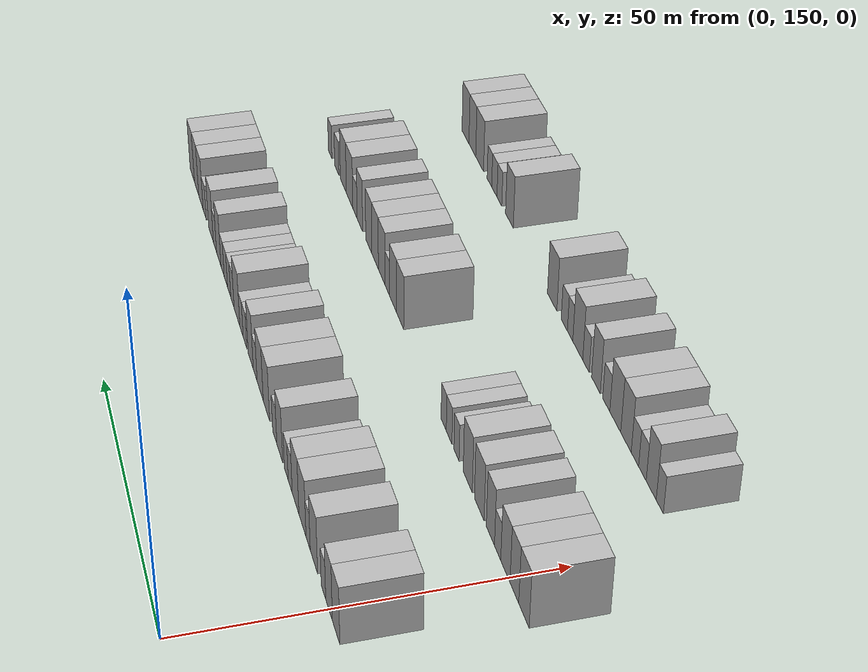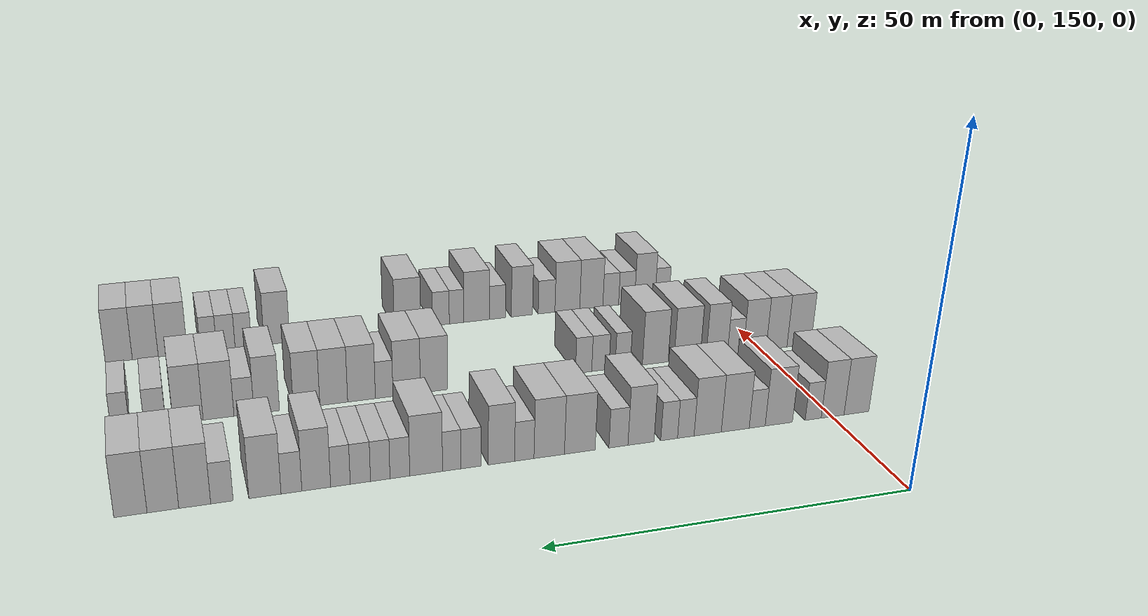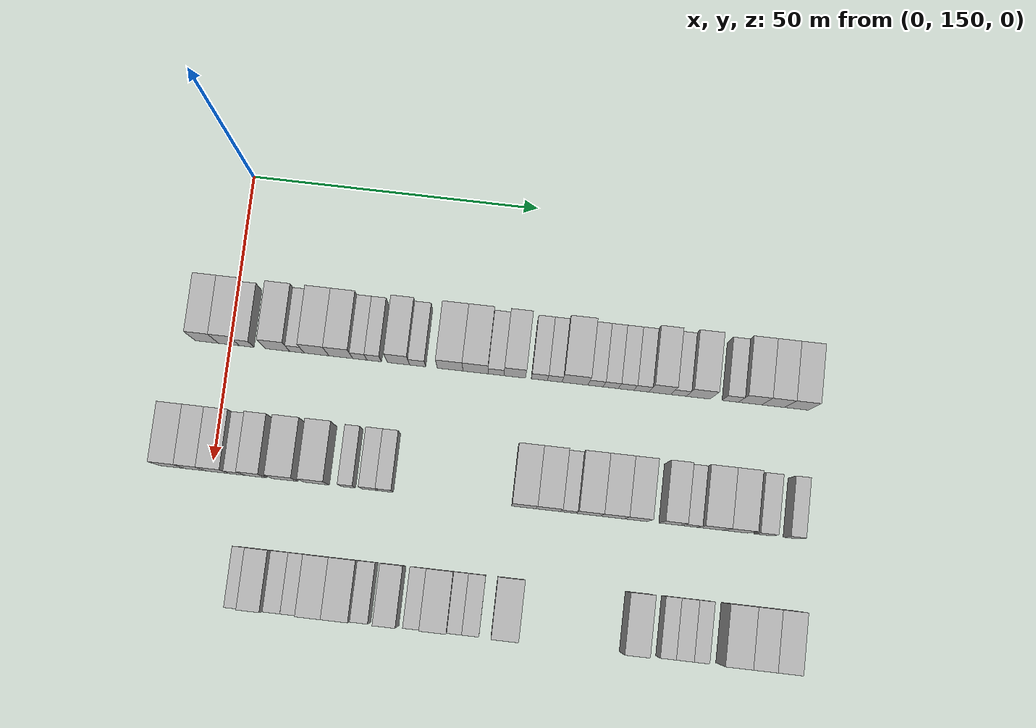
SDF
<sdf version="1.6">
 <world name="default">
  <model name="building_80">
   <static>1</static>
   <pose>25.0000 146.0388 0 0.000000 0.000000 0.000000</pose>
   <link name="link">
    <pose>0 0 4.50 0 0 0</pose>
    <collision name="collision"><geometry><box><size>10.0000 3.9945 9.0000</size></box></geometry></collision>
    <visual name="visual">
     <cast_shadows>0</cast_shadows>
     <geometry><box><size>10.0000 3.9945 9.0000</size></box></geometry>
     <material>
      <script>
       <uri>model://HANNAS_wall/materials/scripts</uri>
       <uri>model://HANNAS_wall/materials/textures</uri>
       <name>vrc/HANNAS_wall</name>
      </script>
     </material>
    </visual>
   </link>
  </model>
  <model name="building_81">
   <static>1</static>
   <pose>25.0000 149.8512 0 0.000000 0.000000 0.000000</pose>
   <link name="link">
    <pose>0 0 4.50 0 0 0</pose>
    <collision name="collision"><geometry><box><size>10.0000 3.6303 9.0000</size></box></geometry></collision>
    <visual name="visual">
     <cast_shadows>0</cast_shadows>
     <geometry><box><size>10.0000 3.6303 9.0000</size></box></geometry>
     <material>
      <script>
       <uri>model://HANNAS_wall/materials/scripts</uri>
       <uri>model://HANNAS_wall/materials/textures</uri>
       <name>vrc/HANNAS_wall</name>
      </script>
     </material>
    </visual>
   </link>
  </model>
  <model name="building_82">
   <static>1</static>
   <pose>25.0000 152.9293 0 0.000000 0.000000 0.000000</pose>
   <link name="link">
    <pose>0 0 3.00 0 0 0</pose>
    <collision name="collision"><geometry><box><size>10.0000 2.5258 6.0000</size></box></geometry></collision>
    <visual name="visual">
     <cast_shadows>0</cast_shadows>
     <geometry><box><size>10.0000 2.5258 6.0000</size></box></geometry>
     <material>
      <script>
       <uri>model://HANNAS_wall/materials/scripts</uri>
       <uri>model://HANNAS_wall/materials/textures</uri>
       <name>vrc/HANNAS_wall</name>
      </script>
     </material>
    </visual>
   </link>
  </model>
  <model name="building_83">
   <static>1</static>
   <pose>25.0000 158.3214 0 0.000000 0.000000 0.000000</pose>
   <link name="link">
    <pose>0 0 4.50 0 0 0</pose>
    <collision name="collision"><geometry><box><size>10.0000 4.2585 9.0000</size></box></geometry></collision>
    <visual name="visual">
     <cast_shadows>0</cast_shadows>
     <geometry><box><size>10.0000 4.2585 9.0000</size></box></geometry>
     <material>
      <script>
       <uri>model://HANNAS_wall/materials/scripts</uri>
       <uri>model://HANNAS_wall/materials/textures</uri>
       <name>vrc/HANNAS_wall</name>
      </script>
     </material>
    </visual>
   </link>
  </model>
  <model name="building_84">
   <static>1</static>
   <pose>25.0000 161.6868 0 0.000000 0.000000 0.000000</pose>
   <link name="link">
    <pose>0 0 3.00 0 0 0</pose>
    <collision name="collision"><geometry><box><size>10.0000 2.4722 6.0000</size></box></geometry></collision>
    <visual name="visual">
     <cast_shadows>0</cast_shadows>
     <geometry><box><size>10.0000 2.4722 6.0000</size></box></geometry>
     <material>
      <script>
       <uri>model://HANNAS_wall/materials/scripts</uri>
       <uri>model://HANNAS_wall/materials/textures</uri>
       <name>vrc/HANNAS_wall</name>
      </script>
     </material>
    </visual>
   </link>
  </model>
  <model name="building_85">
   <static>1</static>
   <pose>25.0000 165.0576 0 0.000000 0.000000 0.000000</pose>
   <link name="link">
    <pose>0 0 4.50 0 0 0</pose>
    <collision name="collision"><geometry><box><size>10.0000 4.2694 9.0000</size></box></geometry></collision>
    <visual name="visual">
     <cast_shadows>0</cast_shadows>
     <geometry><box><size>10.0000 4.2694 9.0000</size></box></geometry>
     <material>
      <script>
       <uri>model://HANNAS_wall/materials/scripts</uri>
       <uri>model://HANNAS_wall/materials/textures</uri>
       <name>vrc/HANNAS_wall</name>
      </script>
     </material>
    </visual>
   </link>
  </model>
  <model name="building_86">
   <static>1</static>
   <pose>25.0000 169.2549 0 0.000000 0.000000 0.000000</pose>
   <link name="link">
    <pose>0 0 4.50 0 0 0</pose>
    <collision name="collision"><geometry><box><size>10.0000 4.1251 9.0000</size></box></geometry></collision>
    <visual name="visual">
     <cast_shadows>0</cast_shadows>
     <geometry><box><size>10.0000 4.1251 9.0000</size></box></geometry>
     <material>
      <script>
       <uri>model://HANNAS_wall/materials/scripts</uri>
       <uri>model://HANNAS_wall/materials/textures</uri>
       <name>vrc/HANNAS_wall</name>
      </script>
     </material>
    </visual>
   </link>
  </model>
  <model name="building_87">
   <static>1</static>
   <pose>25.0000 172.5622 0 0.000000 0.000000 0.000000</pose>
   <link name="link">
    <pose>0 0 3.00 0 0 0</pose>
    <collision name="collision"><geometry><box><size>10.0000 2.4895 6.0000</size></box></geometry></collision>
    <visual name="visual">
     <cast_shadows>0</cast_shadows>
     <geometry><box><size>10.0000 2.4895 6.0000</size></box></geometry>
     <material>
      <script>
       <uri>model://HANNAS_wall/materials/scripts</uri>
       <uri>model://HANNAS_wall/materials/textures</uri>
       <name>vrc/HANNAS_wall</name>
      </script>
     </material>
    </visual>
   </link>
  </model>
  <model name="building_88">
   <static>1</static>
   <pose>25.0000 175.0597 0 0.000000 0.000000 0.000000</pose>
   <link name="link">
    <pose>0 0 3.00 0 0 0</pose>
    <collision name="collision"><geometry><box><size>10.0000 2.5054 6.0000</size></box></geometry></collision>
    <visual name="visual">
     <cast_shadows>0</cast_shadows>
     <geometry><box><size>10.0000 2.5054 6.0000</size></box></geometry>
     <material>
      <script>
       <uri>model://HANNAS_wall/materials/scripts</uri>
       <uri>model://HANNAS_wall/materials/textures</uri>
       <name>vrc/HANNAS_wall</name>
      </script>
     </material>
    </visual>
   </link>
  </model>
  <model name="building_89">
   <static>1</static>
   <pose>25.0000 179.2354 0 0.000000 0.000000 0.000000</pose>
   <link name="link">
    <pose>0 0 4.50 0 0 0</pose>
    <collision name="collision"><geometry><box><size>10.0000 3.8461 9.0000</size></box></geometry></collision>
    <visual name="visual">
     <cast_shadows>0</cast_shadows>
     <geometry><box><size>10.0000 3.8461 9.0000</size></box></geometry>
     <material>
      <script>
       <uri>model://HANNAS_wall/materials/scripts</uri>
       <uri>model://HANNAS_wall/materials/textures</uri>
       <name>vrc/HANNAS_wall</name>
      </script>
     </material>
    </visual>
   </link>
  </model>
  <model name="building_90">
   <static>1</static>
   <pose>25.0000 182.5520 0 0.000000 0.000000 0.000000</pose>
   <link name="link">
    <pose>0 0 3.00 0 0 0</pose>
    <collision name="collision"><geometry><box><size>10.0000 2.7871 6.0000</size></box></geometry></collision>
    <visual name="visual">
     <cast_shadows>0</cast_shadows>
     <geometry><box><size>10.0000 2.7871 6.0000</size></box></geometry>
     <material>
      <script>
       <uri>model://HANNAS_wall/materials/scripts</uri>
       <uri>model://HANNAS_wall/materials/textures</uri>
       <name>vrc/HANNAS_wall</name>
      </script>
     </material>
    </visual>
   </link>
  </model>
  <model name="building_91">
   <static>1</static>
   <pose>25.0000 188.1595 0 0.000000 0.000000 0.000000</pose>
   <link name="link">
    <pose>0 0 4.50 0 0 0</pose>
    <collision name="collision"><geometry><box><size>10.0000 4.4278 9.0000</size></box></geometry></collision>
    <visual name="visual">
     <cast_shadows>0</cast_shadows>
     <geometry><box><size>10.0000 4.4278 9.0000</size></box></geometry>
     <material>
      <script>
       <uri>model://HANNAS_wall/materials/scripts</uri>
       <uri>model://HANNAS_wall/materials/textures</uri>
       <name>vrc/HANNAS_wall</name>
      </script>
     </material>
    </visual>
   </link>
  </model>
  <model name="building_92">
   <static>1</static>
   <pose>25.0000 192.5431 0 0.000000 0.000000 0.000000</pose>
   <link name="link">
    <pose>0 0 4.50 0 0 0</pose>
    <collision name="collision"><geometry><box><size>10.0000 4.3395 9.0000</size></box></geometry></collision>
    <visual name="visual">
     <cast_shadows>0</cast_shadows>
     <geometry><box><size>10.0000 4.3395 9.0000</size></box></geometry>
     <material>
      <script>
       <uri>model://HANNAS_wall/materials/scripts</uri>
       <uri>model://HANNAS_wall/materials/textures</uri>
       <name>vrc/HANNAS_wall</name>
      </script>
     </material>
    </visual>
   </link>
  </model>
  <model name="building_93">
   <static>1</static>
   <pose>25.0000 196.0857 0 0.000000 0.000000 0.000000</pose>
   <link name="link">
    <pose>0 0 3.00 0 0 0</pose>
    <collision name="collision"><geometry><box><size>10.0000 2.7457 6.0000</size></box></geometry></collision>
    <visual name="visual">
     <cast_shadows>0</cast_shadows>
     <geometry><box><size>10.0000 2.7457 6.0000</size></box></geometry>
     <material>
      <script>
       <uri>model://HANNAS_wall/materials/scripts</uri>
       <uri>model://HANNAS_wall/materials/textures</uri>
       <name>vrc/HANNAS_wall</name>
      </script>
     </material>
    </visual>
   </link>
  </model>
  <model name="building_94">
   <static>1</static>
   <pose>25.0000 199.3051 0 0.000000 0.000000 0.000000</pose>
   <link name="link">
    <pose>0 0 4.50 0 0 0</pose>
    <collision name="collision"><geometry><box><size>10.0000 3.6931 9.0000</size></box></geometry></collision>
    <visual name="visual">
     <cast_shadows>0</cast_shadows>
     <geometry><box><size>10.0000 3.6931 9.0000</size></box></geometry>
     <material>
      <script>
       <uri>model://HANNAS_wall/materials/scripts</uri>
       <uri>model://HANNAS_wall/materials/textures</uri>
       <name>vrc/HANNAS_wall</name>
      </script>
     </material>
    </visual>
   </link>
  </model>
  <model name="building_95">
   <static>1</static>
   <pose>25.0000 203.5489 0 0.000000 0.000000 0.000000</pose>
   <link name="link">
    <pose>0 0 3.00 0 0 0</pose>
    <collision name="collision"><geometry><box><size>10.0000 2.7944 6.0000</size></box></geometry></collision>
    <visual name="visual">
     <cast_shadows>0</cast_shadows>
     <geometry><box><size>10.0000 2.7944 6.0000</size></box></geometry>
     <material>
      <script>
       <uri>model://HANNAS_wall/materials/scripts</uri>
       <uri>model://HANNAS_wall/materials/textures</uri>
       <name>vrc/HANNAS_wall</name>
      </script>
     </material>
    </visual>
   </link>
  </model>
  <model name="building_96">
   <static>1</static>
   <pose>25.0000 206.2006 0 0.000000 0.000000 0.000000</pose>
   <link name="link">
    <pose>0 0 3.00 0 0 0</pose>
    <collision name="collision"><geometry><box><size>10.0000 2.5090 6.0000</size></box></geometry></collision>
    <visual name="visual">
     <cast_shadows>0</cast_shadows>
     <geometry><box><size>10.0000 2.5090 6.0000</size></box></geometry>
     <material>
      <script>
       <uri>model://HANNAS_wall/materials/scripts</uri>
       <uri>model://HANNAS_wall/materials/textures</uri>
       <name>vrc/HANNAS_wall</name>
      </script>
     </material>
    </visual>
   </link>
  </model>
  <model name="building_97">
   <static>1</static>
   <pose>25.0000 209.6805 0 0.000000 0.000000 0.000000</pose>
   <link name="link">
    <pose>0 0 4.50 0 0 0</pose>
    <collision name="collision"><geometry><box><size>10.0000 4.4508 9.0000</size></box></geometry></collision>
    <visual name="visual">
     <cast_shadows>0</cast_shadows>
     <geometry><box><size>10.0000 4.4508 9.0000</size></box></geometry>
     <material>
      <script>
       <uri>model://HANNAS_wall/materials/scripts</uri>
       <uri>model://HANNAS_wall/materials/textures</uri>
       <name>vrc/HANNAS_wall</name>
      </script>
     </material>
    </visual>
   </link>
  </model>
  <model name="building_98">
   <static>1</static>
   <pose>25.0000 213.2319 0 0.000000 0.000000 0.000000</pose>
   <link name="link">
    <pose>0 0 3.00 0 0 0</pose>
    <collision name="collision"><geometry><box><size>10.0000 2.6519 6.0000</size></box></geometry></collision>
    <visual name="visual">
     <cast_shadows>0</cast_shadows>
     <geometry><box><size>10.0000 2.6519 6.0000</size></box></geometry>
     <material>
      <script>
       <uri>model://HANNAS_wall/materials/scripts</uri>
       <uri>model://HANNAS_wall/materials/textures</uri>
       <name>vrc/HANNAS_wall</name>
      </script>
     </material>
    </visual>
   </link>
  </model>
  <model name="building_99">
   <static>1</static>
   <pose>25.0000 215.8599 0 0.000000 0.000000 0.000000</pose>
   <link name="link">
    <pose>0 0 3.00 0 0 0</pose>
    <collision name="collision"><geometry><box><size>10.0000 2.6041 6.0000</size></box></geometry></collision>
    <visual name="visual">
     <cast_shadows>0</cast_shadows>
     <geometry><box><size>10.0000 2.6041 6.0000</size></box></geometry>
     <material>
      <script>
       <uri>model://HANNAS_wall/materials/scripts</uri>
       <uri>model://HANNAS_wall/materials/textures</uri>
       <name>vrc/HANNAS_wall</name>
      </script>
     </material>
    </visual>
   </link>
  </model>
  <model name="building_100">
   <static>1</static>
   <pose>25.0000 218.5046 0 0.000000 0.000000 0.000000</pose>
   <link name="link">
    <pose>0 0 3.00 0 0 0</pose>
    <collision name="collision"><geometry><box><size>10.0000 2.6853 6.0000</size></box></geometry></collision>
    <visual name="visual">
     <cast_shadows>0</cast_shadows>
     <geometry><box><size>10.0000 2.6853 6.0000</size></box></geometry>
     <material>
      <script>
       <uri>model://HANNAS_wall/materials/scripts</uri>
       <uri>model://HANNAS_wall/materials/textures</uri>
       <name>vrc/HANNAS_wall</name>
      </script>
     </material>
    </visual>
   </link>
  </model>
  <model name="building_101">
   <static>1</static>
   <pose>25.0000 221.1398 0 0.000000 0.000000 0.000000</pose>
   <link name="link">
    <pose>0 0 3.00 0 0 0</pose>
    <collision name="collision"><geometry><box><size>10.0000 2.5850 6.0000</size></box></geometry></collision>
    <visual name="visual">
     <cast_shadows>0</cast_shadows>
     <geometry><box><size>10.0000 2.5850 6.0000</size></box></geometry>
     <material>
      <script>
       <uri>model://HANNAS_wall/materials/scripts</uri>
       <uri>model://HANNAS_wall/materials/textures</uri>
       <name>vrc/HANNAS_wall</name>
      </script>
     </material>
    </visual>
   </link>
  </model>
  <model name="building_102">
   <static>1</static>
   <pose>25.0000 224.3120 0 0.000000 0.000000 0.000000</pose>
   <link name="link">
    <pose>0 0 4.50 0 0 0</pose>
    <collision name="collision"><geometry><box><size>10.0000 3.7595 9.0000</size></box></geometry></collision>
    <visual name="visual">
     <cast_shadows>0</cast_shadows>
     <geometry><box><size>10.0000 3.7595 9.0000</size></box></geometry>
     <material>
      <script>
       <uri>model://HANNAS_wall/materials/scripts</uri>
       <uri>model://HANNAS_wall/materials/textures</uri>
       <name>vrc/HANNAS_wall</name>
      </script>
     </material>
    </visual>
   </link>
  </model>
  <model name="building_103">
   <static>1</static>
   <pose>25.0000 227.5388 0 0.000000 0.000000 0.000000</pose>
   <link name="link">
    <pose>0 0 3.00 0 0 0</pose>
    <collision name="collision"><geometry><box><size>10.0000 2.6941 6.0000</size></box></geometry></collision>
    <visual name="visual">
     <cast_shadows>0</cast_shadows>
     <geometry><box><size>10.0000 2.6941 6.0000</size></box></geometry>
     <material>
      <script>
       <uri>model://HANNAS_wall/materials/scripts</uri>
       <uri>model://HANNAS_wall/materials/textures</uri>
       <name>vrc/HANNAS_wall</name>
      </script>
     </material>
    </visual>
   </link>
  </model>
  <model name="building_104">
   <static>1</static>
   <pose>25.0000 230.9454 0 0.000000 0.000000 0.000000</pose>
   <link name="link">
    <pose>0 0 4.50 0 0 0</pose>
    <collision name="collision"><geometry><box><size>10.0000 4.1192 9.0000</size></box></geometry></collision>
    <visual name="visual">
     <cast_shadows>0</cast_shadows>
     <geometry><box><size>10.0000 4.1192 9.0000</size></box></geometry>
     <material>
      <script>
       <uri>model://HANNAS_wall/materials/scripts</uri>
       <uri>model://HANNAS_wall/materials/textures</uri>
       <name>vrc/HANNAS_wall</name>
      </script>
     </material>
    </visual>
   </link>
  </model>
  <model name="building_105">
   <static>1</static>
   <pose>25.0000 236.4222 0 0.000000 0.000000 0.000000</pose>
   <link name="link">
    <pose>0 0 3.00 0 0 0</pose>
    <collision name="collision"><geometry><box><size>10.0000 2.8344 6.0000</size></box></geometry></collision>
    <visual name="visual">
     <cast_shadows>0</cast_shadows>
     <geometry><box><size>10.0000 2.8344 6.0000</size></box></geometry>
     <material>
      <script>
       <uri>model://HANNAS_wall/materials/scripts</uri>
       <uri>model://HANNAS_wall/materials/textures</uri>
       <name>vrc/HANNAS_wall</name>
      </script>
     </material>
    </visual>
   </link>
  </model>
  <model name="building_106">
   <static>1</static>
   <pose>25.0000 239.8329 0 0.000000 0.000000 0.000000</pose>
   <link name="link">
    <pose>0 0 4.50 0 0 0</pose>
    <collision name="collision"><geometry><box><size>10.0000 3.9869 9.0000</size></box></geometry></collision>
    <visual name="visual">
     <cast_shadows>0</cast_shadows>
     <geometry><box><size>10.0000 3.9869 9.0000</size></box></geometry>
     <material>
      <script>
       <uri>model://HANNAS_wall/materials/scripts</uri>
       <uri>model://HANNAS_wall/materials/textures</uri>
       <name>vrc/HANNAS_wall</name>
      </script>
     </material>
    </visual>
   </link>
  </model>
  <model name="building_107">
   <static>1</static>
   <pose>25.0000 243.7874 0 0.000000 0.000000 0.000000</pose>
   <link name="link">
    <pose>0 0 4.50 0 0 0</pose>
    <collision name="collision"><geometry><box><size>10.0000 3.9222 9.0000</size></box></geometry></collision>
    <visual name="visual">
     <cast_shadows>0</cast_shadows>
     <geometry><box><size>10.0000 3.9222 9.0000</size></box></geometry>
     <material>
      <script>
       <uri>model://HANNAS_wall/materials/scripts</uri>
       <uri>model://HANNAS_wall/materials/textures</uri>
       <name>vrc/HANNAS_wall</name>
      </script>
     </material>
    </visual>
   </link>
  </model>
  <model name="building_108">
   <static>1</static>
   <pose>25.0000 247.7824 0 0.000000 0.000000 0.000000</pose>
   <link name="link">
    <pose>0 0 4.50 0 0 0</pose>
    <collision name="collision"><geometry><box><size>10.0000 4.0678 9.0000</size></box></geometry></collision>
    <visual name="visual">
     <cast_shadows>0</cast_shadows>
     <geometry><box><size>10.0000 4.0678 9.0000</size></box></geometry>
     <material>
      <script>
       <uri>model://HANNAS_wall/materials/scripts</uri>
       <uri>model://HANNAS_wall/materials/textures</uri>
       <name>vrc/HANNAS_wall</name>
      </script>
     </material>
    </visual>
   </link>
  </model>
  <model name="building_212">
   <static>1</static>
   <pose>47.0000 143.3835 0 0.000000 0.000000 0.000000</pose>
   <link name="link">
    <pose>0 0 4.50 0 0 0</pose>
    <collision name="collision"><geometry><box><size>10.0000 4.2379 9.0000</size></box></geometry></collision>
    <visual name="visual">
     <cast_shadows>0</cast_shadows>
     <geometry><box><size>10.0000 4.2379 9.0000</size></box></geometry>
     <material>
      <script>
       <uri>model://HANNAS_wall/materials/scripts</uri>
       <uri>model://HANNAS_wall/materials/textures</uri>
       <name>vrc/HANNAS_wall</name>
      </script>
     </material>
    </visual>
   </link>
  </model>
  <model name="building_213">
   <static>1</static>
   <pose>47.0000 147.3208 0 0.000000 0.000000 0.000000</pose>
   <link name="link">
    <pose>0 0 4.50 0 0 0</pose>
    <collision name="collision"><geometry><box><size>10.0000 3.6369 9.0000</size></box></geometry></collision>
    <visual name="visual">
     <cast_shadows>0</cast_shadows>
     <geometry><box><size>10.0000 3.6369 9.0000</size></box></geometry>
     <material>
      <script>
       <uri>model://HANNAS_wall/materials/scripts</uri>
       <uri>model://HANNAS_wall/materials/textures</uri>
       <name>vrc/HANNAS_wall</name>
      </script>
     </material>
    </visual>
   </link>
  </model>
  <model name="building_214">
   <static>1</static>
   <pose>47.0000 151.1155 0 0.000000 0.000000 0.000000</pose>
   <link name="link">
    <pose>0 0 4.50 0 0 0</pose>
    <collision name="collision"><geometry><box><size>10.0000 3.9524 9.0000</size></box></geometry></collision>
    <visual name="visual">
     <cast_shadows>0</cast_shadows>
     <geometry><box><size>10.0000 3.9524 9.0000</size></box></geometry>
     <material>
      <script>
       <uri>model://HANNAS_wall/materials/scripts</uri>
       <uri>model://HANNAS_wall/materials/textures</uri>
       <name>vrc/HANNAS_wall</name>
      </script>
     </material>
    </visual>
   </link>
  </model>
  <model name="building_215">
   <static>1</static>
   <pose>47.0000 154.4512 0 0.000000 0.000000 0.000000</pose>
   <link name="link">
    <pose>0 0 3.00 0 0 0</pose>
    <collision name="collision"><geometry><box><size>10.0000 2.7190 6.0000</size></box></geometry></collision>
    <visual name="visual">
     <cast_shadows>0</cast_shadows>
     <geometry><box><size>10.0000 2.7190 6.0000</size></box></geometry>
     <material>
      <script>
       <uri>model://HANNAS_wall/materials/scripts</uri>
       <uri>model://HANNAS_wall/materials/textures</uri>
       <name>vrc/HANNAS_wall</name>
      </script>
     </material>
    </visual>
   </link>
  </model>
  <model name="building_216">
   <static>1</static>
   <pose>47.0000 157.6299 0 0.000000 0.000000 0.000000</pose>
   <link name="link">
    <pose>0 0 4.50 0 0 0</pose>
    <collision name="collision"><geometry><box><size>10.0000 3.6386 9.0000</size></box></geometry></collision>
    <visual name="visual">
     <cast_shadows>0</cast_shadows>
     <geometry><box><size>10.0000 3.6386 9.0000</size></box></geometry>
     <material>
      <script>
       <uri>model://HANNAS_wall/materials/scripts</uri>
       <uri>model://HANNAS_wall/materials/textures</uri>
       <name>vrc/HANNAS_wall</name>
      </script>
     </material>
    </visual>
   </link>
  </model>
  <model name="building_217">
   <static>1</static>
   <pose>47.0000 162.6562 0 0.000000 0.000000 0.000000</pose>
   <link name="link">
    <pose>0 0 4.50 0 0 0</pose>
    <collision name="collision"><geometry><box><size>10.0000 4.4139 9.0000</size></box></geometry></collision>
    <visual name="visual">
     <cast_shadows>0</cast_shadows>
     <geometry><box><size>10.0000 4.4139 9.0000</size></box></geometry>
     <material>
      <script>
       <uri>model://HANNAS_wall/materials/scripts</uri>
       <uri>model://HANNAS_wall/materials/textures</uri>
       <name>vrc/HANNAS_wall</name>
      </script>
     </material>
    </visual>
   </link>
  </model>
  <model name="building_218">
   <static>1</static>
   <pose>47.0000 168.0000 0 0.000000 0.000000 0.000000</pose>
   <link name="link">
    <pose>0 0 4.50 0 0 0</pose>
    <collision name="collision"><geometry><box><size>10.0000 4.2738 9.0000</size></box></geometry></collision>
    <visual name="visual">
     <cast_shadows>0</cast_shadows>
     <geometry><box><size>10.0000 4.2738 9.0000</size></box></geometry>
     <material>
      <script>
       <uri>model://HANNAS_wall/materials/scripts</uri>
       <uri>model://HANNAS_wall/materials/textures</uri>
       <name>vrc/HANNAS_wall</name>
      </script>
     </material>
    </visual>
   </link>
  </model>
  <model name="building_219">
   <static>1</static>
   <pose>47.0000 173.3878 0 0.000000 0.000000 0.000000</pose>
   <link name="link">
    <pose>0 0 3.00 0 0 0</pose>
    <collision name="collision"><geometry><box><size>10.0000 2.5019 6.0000</size></box></geometry></collision>
    <visual name="visual">
     <cast_shadows>0</cast_shadows>
     <geometry><box><size>10.0000 2.5019 6.0000</size></box></geometry>
     <material>
      <script>
       <uri>model://HANNAS_wall/materials/scripts</uri>
       <uri>model://HANNAS_wall/materials/textures</uri>
       <name>vrc/HANNAS_wall</name>
      </script>
     </material>
    </visual>
   </link>
  </model>
  <model name="building_220">
   <static>1</static>
   <pose>47.0000 177.0445 0 0.000000 0.000000 0.000000</pose>
   <link name="link">
    <pose>0 0 3.00 0 0 0</pose>
    <collision name="collision"><geometry><box><size>10.0000 2.8113 6.0000</size></box></geometry></collision>
    <visual name="visual">
     <cast_shadows>0</cast_shadows>
     <geometry><box><size>10.0000 2.8113 6.0000</size></box></geometry>
     <material>
      <script>
       <uri>model://HANNAS_wall/materials/scripts</uri>
       <uri>model://HANNAS_wall/materials/textures</uri>
       <name>vrc/HANNAS_wall</name>
      </script>
     </material>
    </visual>
   </link>
  </model>
  <model name="building_221">
   <static>1</static>
   <pose>47.0000 179.7678 0 0.000000 0.000000 0.000000</pose>
   <link name="link">
    <pose>0 0 3.00 0 0 0</pose>
    <collision name="collision"><geometry><box><size>10.0000 2.6355 6.0000</size></box></geometry></collision>
    <visual name="visual">
     <cast_shadows>0</cast_shadows>
     <geometry><box><size>10.0000 2.6355 6.0000</size></box></geometry>
     <material>
      <script>
       <uri>model://HANNAS_wall/materials/scripts</uri>
       <uri>model://HANNAS_wall/materials/textures</uri>
       <name>vrc/HANNAS_wall</name>
      </script>
     </material>
    </visual>
   </link>
  </model>
  <model name="building_222">
   <static>1</static>
   <pose>47.0000 203.3101 0 0.000000 0.000000 0.000000</pose>
   <link name="link">
    <pose>0 0 4.50 0 0 0</pose>
    <collision name="collision"><geometry><box><size>10.0000 4.1497 9.0000</size></box></geometry></collision>
    <visual name="visual">
     <cast_shadows>0</cast_shadows>
     <geometry><box><size>10.0000 4.1497 9.0000</size></box></geometry>
     <material>
      <script>
       <uri>model://HANNAS_wall/materials/scripts</uri>
       <uri>model://HANNAS_wall/materials/textures</uri>
       <name>vrc/HANNAS_wall</name>
      </script>
     </material>
    </visual>
   </link>
  </model>
  <model name="building_223">
   <static>1</static>
   <pose>47.0000 207.4584 0 0.000000 0.000000 0.000000</pose>
   <link name="link">
    <pose>0 0 4.50 0 0 0</pose>
    <collision name="collision"><geometry><box><size>10.0000 4.1469 9.0000</size></box></geometry></collision>
    <visual name="visual">
     <cast_shadows>0</cast_shadows>
     <geometry><box><size>10.0000 4.1469 9.0000</size></box></geometry>
     <material>
      <script>
       <uri>model://HANNAS_wall/materials/scripts</uri>
       <uri>model://HANNAS_wall/materials/textures</uri>
       <name>vrc/HANNAS_wall</name>
      </script>
     </material>
    </visual>
   </link>
  </model>
  <model name="building_224">
   <static>1</static>
   <pose>47.0000 210.8485 0 0.000000 0.000000 0.000000</pose>
   <link name="link">
    <pose>0 0 3.00 0 0 0</pose>
    <collision name="collision"><geometry><box><size>10.0000 2.6334 6.0000</size></box></geometry></collision>
    <visual name="visual">
     <cast_shadows>0</cast_shadows>
     <geometry><box><size>10.0000 2.6334 6.0000</size></box></geometry>
     <material>
      <script>
       <uri>model://HANNAS_wall/materials/scripts</uri>
       <uri>model://HANNAS_wall/materials/textures</uri>
       <name>vrc/HANNAS_wall</name>
      </script>
     </material>
    </visual>
   </link>
  </model>
  <model name="building_225">
   <static>1</static>
   <pose>47.0000 214.2282 0 0.000000 0.000000 0.000000</pose>
   <link name="link">
    <pose>0 0 4.50 0 0 0</pose>
    <collision name="collision"><geometry><box><size>10.0000 4.1259 9.0000</size></box></geometry></collision>
    <visual name="visual">
     <cast_shadows>0</cast_shadows>
     <geometry><box><size>10.0000 4.1259 9.0000</size></box></geometry>
     <material>
      <script>
       <uri>model://HANNAS_wall/materials/scripts</uri>
       <uri>model://HANNAS_wall/materials/textures</uri>
       <name>vrc/HANNAS_wall</name>
      </script>
     </material>
    </visual>
   </link>
  </model>
  <model name="building_226">
   <static>1</static>
   <pose>47.0000 218.3417 0 0.000000 0.000000 0.000000</pose>
   <link name="link">
    <pose>0 0 4.50 0 0 0</pose>
    <collision name="collision"><geometry><box><size>10.0000 4.1012 9.0000</size></box></geometry></collision>
    <visual name="visual">
     <cast_shadows>0</cast_shadows>
     <geometry><box><size>10.0000 4.1012 9.0000</size></box></geometry>
     <material>
      <script>
       <uri>model://HANNAS_wall/materials/scripts</uri>
       <uri>model://HANNAS_wall/materials/textures</uri>
       <name>vrc/HANNAS_wall</name>
      </script>
     </material>
    </visual>
   </link>
  </model>
  <model name="building_227">
   <static>1</static>
   <pose>47.0000 222.3279 0 0.000000 0.000000 0.000000</pose>
   <link name="link">
    <pose>0 0 4.50 0 0 0</pose>
    <collision name="collision"><geometry><box><size>10.0000 3.8711 9.0000</size></box></geometry></collision>
    <visual name="visual">
     <cast_shadows>0</cast_shadows>
     <geometry><box><size>10.0000 3.8711 9.0000</size></box></geometry>
     <material>
      <script>
       <uri>model://HANNAS_wall/materials/scripts</uri>
       <uri>model://HANNAS_wall/materials/textures</uri>
       <name>vrc/HANNAS_wall</name>
      </script>
     </material>
    </visual>
   </link>
  </model>
  <model name="building_228">
   <static>1</static>
   <pose>47.0000 228.0959 0 0.000000 0.000000 0.000000</pose>
   <link name="link">
    <pose>0 0 4.50 0 0 0</pose>
    <collision name="collision"><geometry><box><size>10.0000 3.6651 9.0000</size></box></geometry></collision>
    <visual name="visual">
     <cast_shadows>0</cast_shadows>
     <geometry><box><size>10.0000 3.6651 9.0000</size></box></geometry>
     <material>
      <script>
       <uri>model://HANNAS_wall/materials/scripts</uri>
       <uri>model://HANNAS_wall/materials/textures</uri>
       <name>vrc/HANNAS_wall</name>
      </script>
     </material>
    </visual>
   </link>
  </model>
  <model name="building_229">
   <static>1</static>
   <pose>47.0000 231.3544 0 0.000000 0.000000 0.000000</pose>
   <link name="link">
    <pose>0 0 3.00 0 0 0</pose>
    <collision name="collision"><geometry><box><size>10.0000 2.8519 6.0000</size></box></geometry></collision>
    <visual name="visual">
     <cast_shadows>0</cast_shadows>
     <geometry><box><size>10.0000 2.8519 6.0000</size></box></geometry>
     <material>
      <script>
       <uri>model://HANNAS_wall/materials/scripts</uri>
       <uri>model://HANNAS_wall/materials/textures</uri>
       <name>vrc/HANNAS_wall</name>
      </script>
     </material>
    </visual>
   </link>
  </model>
  <model name="building_230">
   <static>1</static>
   <pose>47.0000 234.9661 0 0.000000 0.000000 0.000000</pose>
   <link name="link">
    <pose>0 0 4.50 0 0 0</pose>
    <collision name="collision"><geometry><box><size>10.0000 4.3715 9.0000</size></box></geometry></collision>
    <visual name="visual">
     <cast_shadows>0</cast_shadows>
     <geometry><box><size>10.0000 4.3715 9.0000</size></box></geometry>
     <material>
      <script>
       <uri>model://HANNAS_wall/materials/scripts</uri>
       <uri>model://HANNAS_wall/materials/textures</uri>
       <name>vrc/HANNAS_wall</name>
      </script>
     </material>
    </visual>
   </link>
  </model>
  <model name="building_231">
   <static>1</static>
   <pose>47.0000 239.2482 0 0.000000 0.000000 0.000000</pose>
   <link name="link">
    <pose>0 0 4.50 0 0 0</pose>
    <collision name="collision"><geometry><box><size>10.0000 4.1927 9.0000</size></box></geometry></collision>
    <visual name="visual">
     <cast_shadows>0</cast_shadows>
     <geometry><box><size>10.0000 4.1927 9.0000</size></box></geometry>
     <material>
      <script>
       <uri>model://HANNAS_wall/materials/scripts</uri>
       <uri>model://HANNAS_wall/materials/textures</uri>
       <name>vrc/HANNAS_wall</name>
      </script>
     </material>
    </visual>
   </link>
  </model>
  <model name="building_232">
   <static>1</static>
   <pose>47.0000 243.8397 0 0.000000 0.000000 0.000000</pose>
   <link name="link">
    <pose>0 0 3.00 0 0 0</pose>
    <collision name="collision"><geometry><box><size>10.0000 2.9904 6.0000</size></box></geometry></collision>
    <visual name="visual">
     <cast_shadows>0</cast_shadows>
     <geometry><box><size>10.0000 2.9904 6.0000</size></box></geometry>
     <material>
      <script>
       <uri>model://HANNAS_wall/materials/scripts</uri>
       <uri>model://HANNAS_wall/materials/textures</uri>
       <name>vrc/HANNAS_wall</name>
      </script>
     </material>
    </visual>
   </link>
  </model>
  <model name="building_233">
   <static>1</static>
   <pose>47.0000 248.6051 0 0.000000 0.000000 0.000000</pose>
   <link name="link">
    <pose>0 0 3.00 0 0 0</pose>
    <collision name="collision"><geometry><box><size>10.0000 2.5403 6.0000</size></box></geometry></collision>
    <visual name="visual">
     <cast_shadows>0</cast_shadows>
     <geometry><box><size>10.0000 2.5403 6.0000</size></box></geometry>
     <material>
      <script>
       <uri>model://HANNAS_wall/materials/scripts</uri>
       <uri>model://HANNAS_wall/materials/textures</uri>
       <name>vrc/HANNAS_wall</name>
      </script>
     </material>
    </visual>
   </link>
  </model>
  <model name="building_337">
   <static>1</static>
   <pose>69.0000 157.6339 0 0.000000 0.000000 0.000000</pose>
   <link name="link">
    <pose>0 0 3.00 0 0 0</pose>
    <collision name="collision"><geometry><box><size>10.0000 2.6183 6.0000</size></box></geometry></collision>
    <visual name="visual">
     <cast_shadows>0</cast_shadows>
     <geometry><box><size>10.0000 2.6183 6.0000</size></box></geometry>
     <material>
      <script>
       <uri>model://HANNAS_wall/materials/scripts</uri>
       <uri>model://HANNAS_wall/materials/textures</uri>
       <name>vrc/HANNAS_wall</name>
      </script>
     </material>
    </visual>
   </link>
  </model>
  <model name="building_338">
   <static>1</static>
   <pose>69.0000 160.8204 0 0.000000 0.000000 0.000000</pose>
   <link name="link">
    <pose>0 0 4.50 0 0 0</pose>
    <collision name="collision"><geometry><box><size>10.0000 3.7546 9.0000</size></box></geometry></collision>
    <visual name="visual">
     <cast_shadows>0</cast_shadows>
     <geometry><box><size>10.0000 3.7546 9.0000</size></box></geometry>
     <material>
      <script>
       <uri>model://HANNAS_wall/materials/scripts</uri>
       <uri>model://HANNAS_wall/materials/textures</uri>
       <name>vrc/HANNAS_wall</name>
      </script>
     </material>
    </visual>
   </link>
  </model>
  <model name="building_339">
   <static>1</static>
   <pose>69.0000 164.1457 0 0.000000 0.000000 0.000000</pose>
   <link name="link">
    <pose>0 0 3.00 0 0 0</pose>
    <collision name="collision"><geometry><box><size>10.0000 2.8962 6.0000</size></box></geometry></collision>
    <visual name="visual">
     <cast_shadows>0</cast_shadows>
     <geometry><box><size>10.0000 2.8962 6.0000</size></box></geometry>
     <material>
      <script>
       <uri>model://HANNAS_wall/materials/scripts</uri>
       <uri>model://HANNAS_wall/materials/textures</uri>
       <name>vrc/HANNAS_wall</name>
      </script>
     </material>
    </visual>
   </link>
  </model>
  <model name="building_340">
   <static>1</static>
   <pose>69.0000 167.0229 0 0.000000 0.000000 0.000000</pose>
   <link name="link">
    <pose>0 0 3.00 0 0 0</pose>
    <collision name="collision"><geometry><box><size>10.0000 2.8581 6.0000</size></box></geometry></collision>
    <visual name="visual">
     <cast_shadows>0</cast_shadows>
     <geometry><box><size>10.0000 2.8581 6.0000</size></box></geometry>
     <material>
      <script>
       <uri>model://HANNAS_wall/materials/scripts</uri>
       <uri>model://HANNAS_wall/materials/textures</uri>
       <name>vrc/HANNAS_wall</name>
      </script>
     </material>
    </visual>
   </link>
  </model>
  <model name="building_341">
   <static>1</static>
   <pose>69.0000 170.5315 0 0.000000 0.000000 0.000000</pose>
   <link name="link">
    <pose>0 0 4.50 0 0 0</pose>
    <collision name="collision"><geometry><box><size>10.0000 4.1591 9.0000</size></box></geometry></collision>
    <visual name="visual">
     <cast_shadows>0</cast_shadows>
     <geometry><box><size>10.0000 4.1591 9.0000</size></box></geometry>
     <material>
      <script>
       <uri>model://HANNAS_wall/materials/scripts</uri>
       <uri>model://HANNAS_wall/materials/textures</uri>
       <name>vrc/HANNAS_wall</name>
      </script>
     </material>
    </visual>
   </link>
  </model>
  <model name="building_342">
   <static>1</static>
   <pose>69.0000 174.8207 0 0.000000 0.000000 0.000000</pose>
   <link name="link">
    <pose>0 0 4.50 0 0 0</pose>
    <collision name="collision"><geometry><box><size>10.0000 4.4193 9.0000</size></box></geometry></collision>
    <visual name="visual">
     <cast_shadows>0</cast_shadows>
     <geometry><box><size>10.0000 4.4193 9.0000</size></box></geometry>
     <material>
      <script>
       <uri>model://HANNAS_wall/materials/scripts</uri>
       <uri>model://HANNAS_wall/materials/textures</uri>
       <name>vrc/HANNAS_wall</name>
      </script>
     </material>
    </visual>
   </link>
  </model>
  <model name="building_343">
   <static>1</static>
   <pose>69.0000 178.5126 0 0.000000 0.000000 0.000000</pose>
   <link name="link">
    <pose>0 0 3.00 0 0 0</pose>
    <collision name="collision"><geometry><box><size>10.0000 2.9645 6.0000</size></box></geometry></collision>
    <visual name="visual">
     <cast_shadows>0</cast_shadows>
     <geometry><box><size>10.0000 2.9645 6.0000</size></box></geometry>
     <material>
      <script>
       <uri>model://HANNAS_wall/materials/scripts</uri>
       <uri>model://HANNAS_wall/materials/textures</uri>
       <name>vrc/HANNAS_wall</name>
      </script>
     </material>
    </visual>
   </link>
  </model>
  <model name="building_344">
   <static>1</static>
   <pose>69.0000 182.8594 0 0.000000 0.000000 0.000000</pose>
   <link name="link">
    <pose>0 0 4.50 0 0 0</pose>
    <collision name="collision"><geometry><box><size>10.0000 3.7292 9.0000</size></box></geometry></collision>
    <visual name="visual">
     <cast_shadows>0</cast_shadows>
     <geometry><box><size>10.0000 3.7292 9.0000</size></box></geometry>
     <material>
      <script>
       <uri>model://HANNAS_wall/materials/scripts</uri>
       <uri>model://HANNAS_wall/materials/textures</uri>
       <name>vrc/HANNAS_wall</name>
      </script>
     </material>
    </visual>
   </link>
  </model>
  <model name="building_345">
   <static>1</static>
   <pose>69.0000 187.1300 0 0.000000 0.000000 0.000000</pose>
   <link name="link">
    <pose>0 0 3.00 0 0 0</pose>
    <collision name="collision"><geometry><box><size>10.0000 2.8119 6.0000</size></box></geometry></collision>
    <visual name="visual">
     <cast_shadows>0</cast_shadows>
     <geometry><box><size>10.0000 2.8119 6.0000</size></box></geometry>
     <material>
      <script>
       <uri>model://HANNAS_wall/materials/scripts</uri>
       <uri>model://HANNAS_wall/materials/textures</uri>
       <name>vrc/HANNAS_wall</name>
      </script>
     </material>
    </visual>
   </link>
  </model>
  <model name="building_346">
   <static>1</static>
   <pose>69.0000 190.7437 0 0.000000 0.000000 0.000000</pose>
   <link name="link">
    <pose>0 0 4.50 0 0 0</pose>
    <collision name="collision"><geometry><box><size>10.0000 4.4156 9.0000</size></box></geometry></collision>
    <visual name="visual">
     <cast_shadows>0</cast_shadows>
     <geometry><box><size>10.0000 4.4156 9.0000</size></box></geometry>
     <material>
      <script>
       <uri>model://HANNAS_wall/materials/scripts</uri>
       <uri>model://HANNAS_wall/materials/textures</uri>
       <name>vrc/HANNAS_wall</name>
      </script>
     </material>
    </visual>
   </link>
  </model>
  <model name="building_347">
   <static>1</static>
   <pose>69.0000 194.1747 0 0.000000 0.000000 0.000000</pose>
   <link name="link">
    <pose>0 0 3.00 0 0 0</pose>
    <collision name="collision"><geometry><box><size>10.0000 2.4463 6.0000</size></box></geometry></collision>
    <visual name="visual">
     <cast_shadows>0</cast_shadows>
     <geometry><box><size>10.0000 2.4463 6.0000</size></box></geometry>
     <material>
      <script>
       <uri>model://HANNAS_wall/materials/scripts</uri>
       <uri>model://HANNAS_wall/materials/textures</uri>
       <name>vrc/HANNAS_wall</name>
      </script>
     </material>
    </visual>
   </link>
  </model>
  <model name="building_348">
   <static>1</static>
   <pose>69.0000 196.8174 0 0.000000 0.000000 0.000000</pose>
   <link name="link">
    <pose>0 0 3.00 0 0 0</pose>
    <collision name="collision"><geometry><box><size>10.0000 2.8393 6.0000</size></box></geometry></collision>
    <visual name="visual">
     <cast_shadows>0</cast_shadows>
     <geometry><box><size>10.0000 2.8393 6.0000</size></box></geometry>
     <material>
      <script>
       <uri>model://HANNAS_wall/materials/scripts</uri>
       <uri>model://HANNAS_wall/materials/textures</uri>
       <name>vrc/HANNAS_wall</name>
      </script>
     </material>
    </visual>
   </link>
  </model>
  <model name="building_349">
   <static>1</static>
   <pose>69.0000 202.4585 0 0.000000 0.000000 0.000000</pose>
   <link name="link">
    <pose>0 0 4.50 0 0 0</pose>
    <collision name="collision"><geometry><box><size>10.0000 4.4429 9.0000</size></box></geometry></collision>
    <visual name="visual">
     <cast_shadows>0</cast_shadows>
     <geometry><box><size>10.0000 4.4429 9.0000</size></box></geometry>
     <material>
      <script>
       <uri>model://HANNAS_wall/materials/scripts</uri>
       <uri>model://HANNAS_wall/materials/textures</uri>
       <name>vrc/HANNAS_wall</name>
      </script>
     </material>
    </visual>
   </link>
  </model>
  <model name="building_350">
   <static>1</static>
   <pose>69.0000 223.8344 0 0.000000 0.000000 0.000000</pose>
   <link name="link">
    <pose>0 0 4.50 0 0 0</pose>
    <collision name="collision"><geometry><box><size>10.0000 4.1030 9.0000</size></box></geometry></collision>
    <visual name="visual">
     <cast_shadows>0</cast_shadows>
     <geometry><box><size>10.0000 4.1030 9.0000</size></box></geometry>
     <material>
      <script>
       <uri>model://HANNAS_wall/materials/scripts</uri>
       <uri>model://HANNAS_wall/materials/textures</uri>
       <name>vrc/HANNAS_wall</name>
      </script>
     </material>
    </visual>
   </link>
  </model>
  <model name="building_351">
   <static>1</static>
   <pose>69.0000 229.1900 0 0.000000 0.000000 0.000000</pose>
   <link name="link">
    <pose>0 0 3.00 0 0 0</pose>
    <collision name="collision"><geometry><box><size>10.0000 2.6081 6.0000</size></box></geometry></collision>
    <visual name="visual">
     <cast_shadows>0</cast_shadows>
     <geometry><box><size>10.0000 2.6081 6.0000</size></box></geometry>
     <material>
      <script>
       <uri>model://HANNAS_wall/materials/scripts</uri>
       <uri>model://HANNAS_wall/materials/textures</uri>
       <name>vrc/HANNAS_wall</name>
      </script>
     </material>
    </visual>
   </link>
  </model>
  <model name="building_352">
   <static>1</static>
   <pose>69.0000 231.9500 0 0.000000 0.000000 0.000000</pose>
   <link name="link">
    <pose>0 0 3.00 0 0 0</pose>
    <collision name="collision"><geometry><box><size>10.0000 2.9119 6.0000</size></box></geometry></collision>
    <visual name="visual">
     <cast_shadows>0</cast_shadows>
     <geometry><box><size>10.0000 2.9119 6.0000</size></box></geometry>
     <material>
      <script>
       <uri>model://HANNAS_wall/materials/scripts</uri>
       <uri>model://HANNAS_wall/materials/textures</uri>
       <name>vrc/HANNAS_wall</name>
      </script>
     </material>
    </visual>
   </link>
  </model>
  <model name="building_353">
   <static>1</static>
   <pose>69.0000 234.6771 0 0.000000 0.000000 0.000000</pose>
   <link name="link">
    <pose>0 0 3.00 0 0 0</pose>
    <collision name="collision"><geometry><box><size>10.0000 2.5424 6.0000</size></box></geometry></collision>
    <visual name="visual">
     <cast_shadows>0</cast_shadows>
     <geometry><box><size>10.0000 2.5424 6.0000</size></box></geometry>
     <material>
      <script>
       <uri>model://HANNAS_wall/materials/scripts</uri>
       <uri>model://HANNAS_wall/materials/textures</uri>
       <name>vrc/HANNAS_wall</name>
      </script>
     </material>
    </visual>
   </link>
  </model>
  <model name="building_354">
   <static>1</static>
   <pose>69.0000 240.1958 0 0.000000 0.000000 0.000000</pose>
   <link name="link">
    <pose>0 0 4.50 0 0 0</pose>
    <collision name="collision"><geometry><box><size>10.0000 4.4949 9.0000</size></box></geometry></collision>
    <visual name="visual">
     <cast_shadows>0</cast_shadows>
     <geometry><box><size>10.0000 4.4949 9.0000</size></box></geometry>
     <material>
      <script>
       <uri>model://HANNAS_wall/materials/scripts</uri>
       <uri>model://HANNAS_wall/materials/textures</uri>
       <name>vrc/HANNAS_wall</name>
      </script>
     </material>
    </visual>
   </link>
  </model>
  <model name="building_355">
   <static>1</static>
   <pose>69.0000 244.4160 0 0.000000 0.000000 0.000000</pose>
   <link name="link">
    <pose>0 0 4.50 0 0 0</pose>
    <collision name="collision"><geometry><box><size>10.0000 3.9456 9.0000</size></box></geometry></collision>
    <visual name="visual">
     <cast_shadows>0</cast_shadows>
     <geometry><box><size>10.0000 3.9456 9.0000</size></box></geometry>
     <material>
      <script>
       <uri>model://HANNAS_wall/materials/scripts</uri>
       <uri>model://HANNAS_wall/materials/textures</uri>
       <name>vrc/HANNAS_wall</name>
      </script>
     </material>
    </visual>
   </link>
  </model>
  <model name="building_356">
   <static>1</static>
   <pose>69.0000 248.4394 0 0.000000 0.000000 0.000000</pose>
   <link name="link">
    <pose>0 0 4.50 0 0 0</pose>
    <collision name="collision"><geometry><box><size>10.0000 4.1012 9.0000</size></box></geometry></collision>
    <visual name="visual">
     <cast_shadows>0</cast_shadows>
     <geometry><box><size>10.0000 4.1012 9.0000</size></box></geometry>
     <material>
      <script>
       <uri>model://HANNAS_wall/materials/scripts</uri>
       <uri>model://HANNAS_wall/materials/textures</uri>
       <name>vrc/HANNAS_wall</name>
      </script>
     </material>
    </visual>
   </link>
  </model>
 </world>
</sdf>
